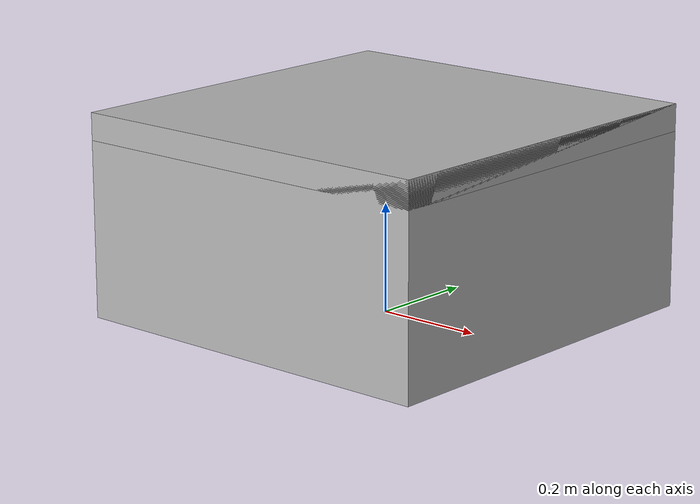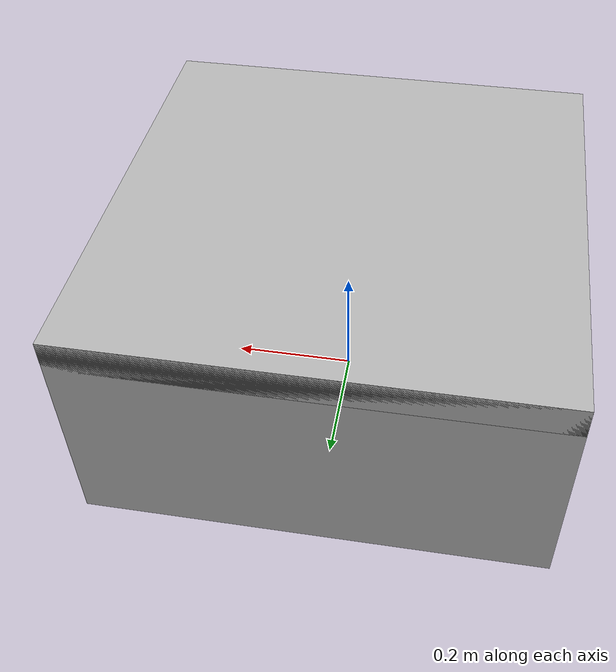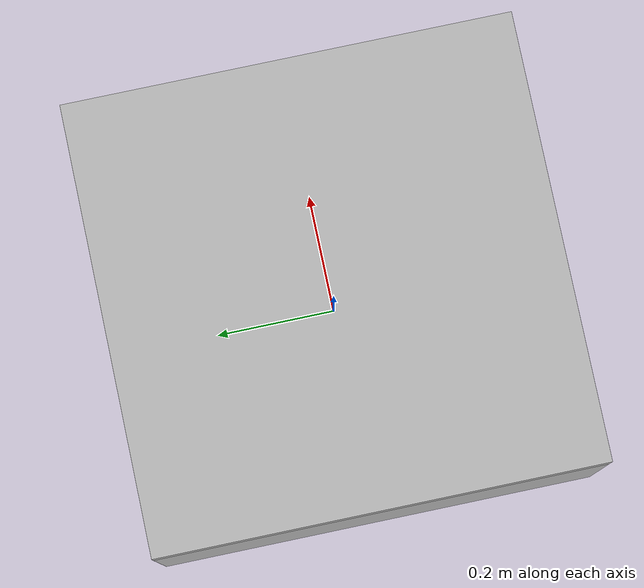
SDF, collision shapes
<?xml version="1.0"?>
<sdf version="1.6">
    <model name="CoffeeTable">
        <link name="body">
            <pose>0 0 0 0 0 0</pose>
            <visual name="visual">
                <geometry>
                    <mesh>
                        <uri>meshes/CoffeeTable.obj</uri>
                        <scale>0.00817 0.00817 0.00817</scale>
                    </mesh>
                </geometry>
            </visual>
            <collision name="tabletop">
                <pose>0 0 0.348 0 0 0</pose>
                <geometry>
                    <box><size>0.726 0.726 0.05</size></box>
                </geometry>
            </collision>
            <collision name="front_left_leg">
                <pose>0.30 0.30 0.174 0 0 0</pose>
                <geometry><box><size>0.05 0.05 0.348</size></box></geometry>
            </collision>
            <collision name="front_right_leg">
                <pose>0.30 -0.30 0.174 0 0 0</pose>
                <geometry><box><size>0.05 0.05 0.348</size></box></geometry>
            </collision>
            <collision name="back_left_leg">
                <pose>-0.30 0.30 0.174 0 0 0</pose>
                <geometry><box><size>0.05 0.05 0.348</size></box></geometry>
            </collision>
            <collision name="back_right_leg">
                <pose>-0.30 -0.30 0.174 0 0 0</pose>
                <geometry><box><size>0.05 0.05 0.348</size></box></geometry>
            </collision>
            <!-- Keep the small robot from passing under the tabletop. -->
            <collision name="navigation_footprint">
                <pose>0 0 0.1865 0 0 0</pose>
                <geometry><box><size>0.726 0.726 0.373</size></box></geometry>
            </collision>
        </link>
    </model>
</sdf>
